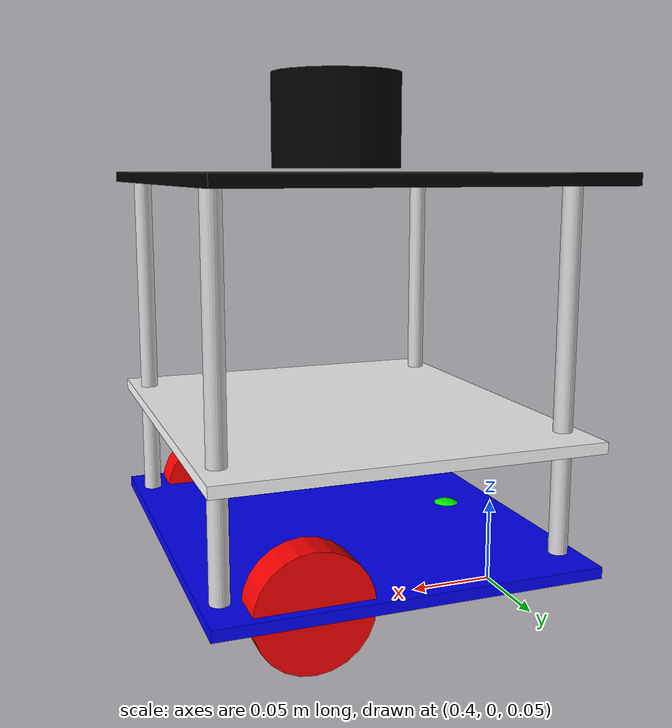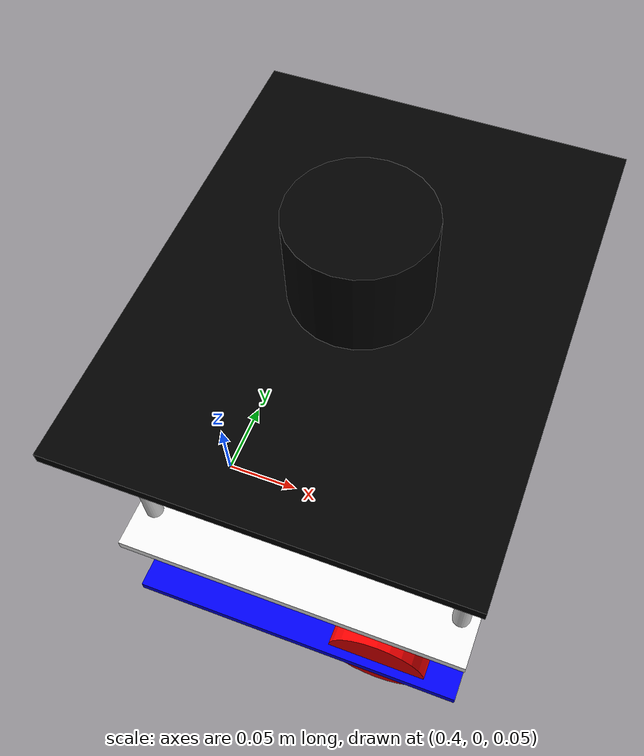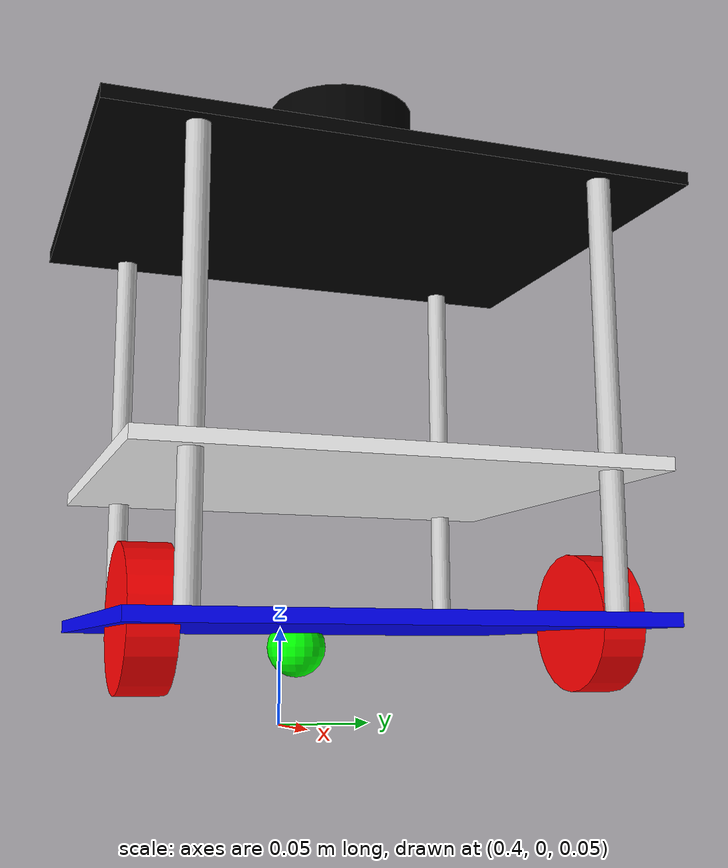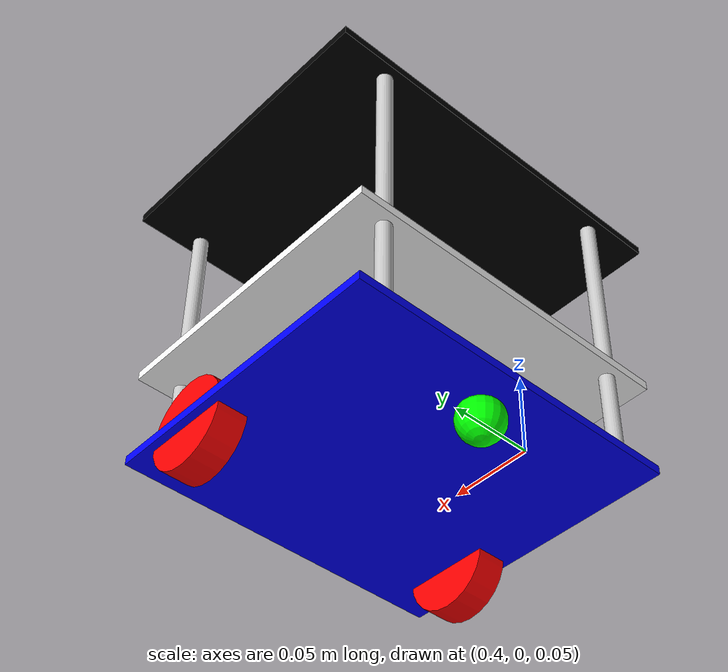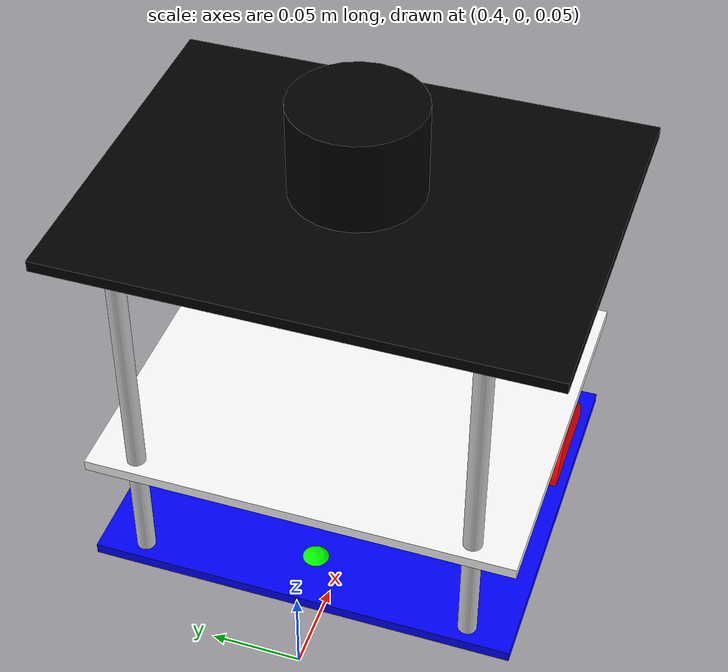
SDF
<?xml version="1.0"?>
<sdf version="1.8">
  <model name="my_robot" canonical_link="chassis">
    <pose>0 0 0 0 0 0</pose>

<link name='chassis'>
        <pose relative_to='__model__'>0.5 0 0.1 0 0 0</pose>
        <inertial>
          <mass>3</mass>
          <inertia>
            <ixx>0.126164</ixx>
            <ixy>0</ixy>
            <ixz>0</ixz>
            <iyy>0.416519</iyy>
            <iyz>0</iyz>
            <izz>0.481014</izz>
          </inertia>
        </inertial>
        <visual name='visual'>
          <geometry>
            <box>
              <size>0.2 0.23 0.006</size>
            </box>
          </geometry>
          <material>
            <ambient>0.0 0.0 1.0 1</ambient>
            <diffuse>0.0 0.0 1.0 1</diffuse>
            <specular>0.0 0.0 1.0 1</specular>
          </material>
        </visual>
        <collision name='collision'>
          <!-- collision важна для реакций физики (сталкивание с объектами) -->
          <geometry>
            <box>
              <size>0.2 0.16 0.006</size>
            </box>
          </geometry>
        </collision>
      </link>

      <link name='left_wheel'>
        <pose relative_to="chassis">0.05 0.10 0 -1.5707 0 0</pose>
        <inertial>
          <mass>0.2</mass>
          <inertia>
            <ixx>0.145833</ixx>
            <ixy>0</ixy>
            <ixz>0</ixz>
            <iyy>0.145833</iyy>
            <iyz>0</iyz>
            <izz>0.125</izz>
          </inertia>
        </inertial>
        <visual name='visual'>
          <geometry>
            <cylinder>
              <radius>0.03</radius>
              <length>0.02</length>
            </cylinder>
          </geometry>
          <material>
            <ambient>1.0 0.0 0.0 1</ambient>
            <diffuse>1.0 0.0 0.0 1</diffuse>
            <specular>1.0 0.0 0.0 1</specular>
          </material>
        </visual>
        <collision name='collision'>
          <geometry>
            <cylinder>
              <radius>0.03</radius>
              <length>0.02</length>
            </cylinder>
          </geometry>
        </collision>
      </link>

      <!--
        Правое колесо (right_wheel).
        Аналогично левому, только y=-0.10.
      -->
      <link name='right_wheel'>
        <pose relative_to="chassis">0.05 -0.10 0 -1.5707 0 0</pose>
        <inertial>
          <mass>0.2</mass>
          <inertia>
            <ixx>0.145833</ixx>
            <ixy>0</ixy>
            <ixz>0</ixz>
            <iyy>0.145833</iyy>
            <iyz>0</iyz>
            <izz>0.125</izz>
          </inertia>
        </inertial>
        <visual name='visual'>
          <geometry>
            <cylinder>
              <radius>0.03</radius>
              <length>0.02</length>
            </cylinder>
          </geometry>
          <material>
            <ambient>1.0 0.0 0.0 1</ambient>
            <diffuse>1.0 0.0 0.0 1</diffuse>
            <specular>1.0 0.0 0.0 1</specular>
          </material>
        </visual>
        <collision name='collision'>
          <geometry>
            <cylinder>
              <radius>0.03</radius>
              <length>0.02</length>
            </cylinder>
          </geometry>
        </collision>
      </link>

      <!--
        frame "caster_frame" привязан к шасси (chassis).
        Это точка, к которой затем крепится link caster (шарообразная опора).
      -->
      <frame name="caster_frame" attached_to='chassis'>
        <pose>-0.07 0 -0.01 0 0 0</pose>
      </frame>

      <!--
        Кастер (caster) - задний опорный шарик.
        Расположен на frame="caster_frame".
        Масса, инерция - условные.
      -->
      <link name='caster'>
        <pose relative_to='caster_frame'/>
        <inertial>
          <mass>0.5</mass>
          <inertia>
            <ixx>0.1</ixx>
            <ixy>0</ixy>
            <ixz>0</ixz>
            <iyy>0.1</iyy>
            <iyz>0</iyz>
            <izz>0.1</izz>
          </inertia>
        </inertial>
        <visual name='visual'>
          <geometry>
            <sphere>
              <radius>0.015</radius>
            </sphere>
          </geometry>
          <material>
            <ambient>0.0 1 0.0 1</ambient>
            <diffuse>0.0 1 0.0 1</diffuse>
            <specular>0.0 1 0.0 1</specular>
          </material>
        </visual>
        <collision name='collision'>
          <geometry>
            <sphere>
              <radius>0.02</radius>
            </sphere>
          </geometry>
        </collision>
      </link>

      <!--
        floor1 - "первый этаж" (промежуточная платформа),
        поднят над шасси на 0.065 м.
        Масса и габариты - условные.
      -->
      <link name="floor1">
        <pose relative_to="chassis">0 0 0.065 0 0 0</pose>
        <inertial>
          <mass>3</mass>
          <inertia>
            <ixx>0.01</ixx>
            <ixy>0</ixy>
            <ixz>0</ixz>
            <iyy>0.01</iyy>
            <iyz>0</iyz>
            <izz>0.01</izz>
          </inertia>
        </inertial>
        <visual name="floor1_visual">
          <geometry>
            <box>
              <size>0.2 0.23 0.006</size>
            </box>
          </geometry>
          <material>
            <ambient>1.0 1.0 1.0 1</ambient>
            <diffuse>1.0 1.0 1.0 1</diffuse>
          </material>
        </visual>
        <collision name="floor1_collision">
          <geometry>
            <box>
              <size>0.2 0.23 0.006</size>
            </box>
          </geometry>
        </collision>
      </link>
      <joint name="floor1_joint" type="fixed">
        <parent>chassis</parent>
        <child>floor1</child>
      </joint>

      <!--
        floor2 - "второй этаж" (верхняя платформа),
        на высоте 0.195 над шасси.
      -->
      <link name="floor2">
        <pose relative_to="chassis">0 0 0.195 0 0 0</pose>
        <inertial>
          <mass>3</mass>
          <inertia>
            <ixx>0.02</ixx>
            <ixy>0</ixy>
            <ixz>0</ixz>
            <iyy>0.02</iyy>
            <iyz>0</iyz>
            <izz>0.02</izz>
          </inertia>
        </inertial>
        <visual name="floor2_visual">
          <geometry>
            <box>
              <size>0.2 0.26 0.006</size>
            </box>
          </geometry>
          <material>
            <ambient>0.0 0.0 0.0 1</ambient>
            <diffuse>0.0 0.0 0.0 1</diffuse>
          </material>
        </visual>
        <collision name="floor2_collision">
          <geometry>
            <box>
              <size>0.2 0.16 0.006</size>
            </box>
          </geometry>
        </collision>
      </link>
      <joint name="floor2_joint" type="fixed">
        <parent>chassis</parent>
        <child>floor2</child>
      </joint>

<!-- Камера -->
    <link name="camera_link">
      <pose relative_to="floor2">0 0 0.03 0 0 0</pose>
      <inertial>
        <mass>0.2</mass>
        <inertia>
          <ixx>0.001</ixx>
          <ixy>0</ixy>
          <ixz>0</ixz>
          <iyy>0.001</iyy>
          <iyz>0</iyz>
          <izz>0.001</izz>
        </inertia>
      </inertial>
      <visual name="camera_visual">
        <geometry>
          <cylinder>
            <radius>0.035</radius>
            <length>0.05</length>
          </cylinder>
        </geometry>
        <material>
          <ambient>0 0 0 1</ambient>
          <diffuse>0 0 0 1</diffuse>
        </material>
      </visual>
      <collision name="camera_collision">
        <geometry>
          <cylinder>
            <radius>0.035</radius>
            <length>0.05</length>
          </cylinder>
        </geometry>
      </collision>

      <!-- Сенсор камеры -->
      <sensor name="camera_sensor" type="camera">
        <camera name="camera">
          <horizontal_fov>1.0472</horizontal_fov>
          <image>
            <width>640</width>
            <height>480</height>
            <format>R8G8B8</format>
          </image>
          <clip>
            <near>0.05</near>
            <far>100</far>
          </clip>
        </camera>
        <always_on>true</always_on>
        <update_rate>30</update_rate>
        <visualize>true</visualize>
      </sensor>
    </link>

    <joint name="camera_joint" type="fixed">
      <parent>floor2</parent>
      <child>camera_link</child>
    </joint>
      <!--
        Ось вращения левого колеса (left_wheel_joint) - revolute.
        joint подключает parent=chassis, child=left_wheel.
      -->
      <joint name='left_wheel_joint' type='revolute'>
        <pose relative_to='left_wheel'/>
        <parent>chassis</parent>
        <child>left_wheel</child>
        <axis>
          <xyz expressed_in='__model__'>0 1 0</xyz>
          <limit>
            <lower>-1.79769e+308</lower>
            <upper>1.79769e+308</upper>
          </limit>
        </axis>
      </joint>

      <!--
        Аналогично для правого колеса (right_wheel_joint).
      -->
      <joint name='right_wheel_joint' type='revolute'>
        <pose relative_to='right_wheel'/>
        <parent>chassis</parent>
        <child>right_wheel</child>
        <axis>
          <xyz expressed_in='__model__'>0 1 0</xyz>
          <limit>
            <lower>-1.79769e+308</lower>
            <upper>1.79769e+308</upper>
          </limit>
        </axis>
      </joint>

      <!-- Передняя левая стойка -->
      <link name="rod_front_left">
        <pose relative_to="chassis">0.09 0.09 0.1 0 0 0</pose>
        <inertial>
          <mass>0.05</mass>
          <inertia>
            <ixx>1e-5</ixx>
            <ixy>0</ixy>
            <ixz>0</ixz>
            <iyy>1e-5</iyy>
            <iyz>0</iyz>
            <izz>1e-5</izz>
          </inertia>
        </inertial>
        <visual name="visual">
          <geometry>
            <cylinder>
              <radius>0.005</radius>
              <length>0.195</length>
            </cylinder>
          </geometry>
          <material>
            <ambient>0.8 0.8 0.8 1</ambient>
            <diffuse>0.8 0.8 0.8 1</diffuse>
            <specular>0.8 0.8 0.8 1</specular>
          </material>
        </visual>
        <collision name="collision">
          <geometry>
            <cylinder>
              <radius>0.005</radius>
              <length>0.195</length>
            </cylinder>
          </geometry>
        </collision>
      </link>
      <joint name="rod_front_left_joint" type="fixed">
        <parent>chassis</parent>
        <child>rod_front_left</child>
      </joint>

      <!-- Передняя правая стойка -->
      <link name="rod_front_right">
        <pose relative_to="chassis">0.09 -0.09 0.1 0 0 0</pose>
        <inertial>
          <mass>0.05</mass>
          <inertia>
            <ixx>1e-5</ixx>
            <ixy>0</ixy>
            <ixz>0</ixz>
            <iyy>1e-5</iyy>
            <iyz>0</iyz>
            <izz>1e-5</izz>
          </inertia>
        </inertial>
        <visual name="visual">
          <geometry>
            <cylinder>
              <radius>0.005</radius>
              <length>0.195</length>
            </cylinder>
          </geometry>
          <material>
            <ambient>0.8 0.8 0.8 1</ambient>
            <diffuse>0.8 0.8 0.8 1</diffuse>
            <specular>0.8 0.8 0.8 1</specular>
          </material>
        </visual>
        <collision name="collision">
          <geometry>
            <cylinder>
              <radius>0.005</radius>
              <length>0.195</length>
            </cylinder>
          </geometry>
        </collision>
      </link>
      <joint name="rod_front_right_joint" type="fixed">
        <parent>chassis</parent>
        <child>rod_front_right</child>
      </joint>

      <!-- Задняя левая стойка -->
      <link name="rod_rear_left">
        <pose relative_to="chassis">-0.09 0.09 0.1 0 0 0</pose>
        <inertial>
          <mass>0.05</mass>
          <inertia>
            <ixx>1e-5</ixx>
            <ixy>0</ixy>
            <ixz>0</ixz>
            <iyy>1e-5</iyy>
            <iyz>0</iyz>
            <izz>1e-5</izz>
          </inertia>
        </inertial>
        <visual name="visual">
          <geometry>
            <cylinder>
              <radius>0.005</radius>
              <length>0.195</length>
            </cylinder>
          </geometry>
          <material>
            <ambient>0.8 0.8 0.8 1</ambient>
            <diffuse>0.8 0.8 0.8 1</diffuse>
            <specular>0.8 0.8 0.8 1</specular>
          </material>
        </visual>
        <collision name="collision">
          <geometry>
            <cylinder>
              <radius>0.005</radius>
              <length>0.195</length>
            </cylinder>
          </geometry>
        </collision>
      </link>
      <joint name="rod_rear_left_joint" type="fixed">
        <parent>chassis</parent>
        <child>rod_rear_left</child>
      </joint>

      <!-- Задняя правая стойка -->
      <link name="rod_rear_right">
        <pose relative_to="chassis">-0.09 -0.09 0.1 0 0 0</pose>
        <inertial>
          <mass>0.05</mass>
          <inertia>
            <ixx>1e-5</ixx>
            <ixy>0</ixy>
            <ixz>0</ixz>
            <iyy>1e-5</iyy>
            <iyz>0</iyz>
            <izz>1e-5</izz>
          </inertia>
        </inertial>
        <visual name="visual">
          <geometry>
            <cylinder>
              <radius>0.005</radius>
              <length>0.195</length>
            </cylinder>
          </geometry>
          <material>
            <ambient>0.8 0.8 0.8 1</ambient>
            <diffuse>0.8 0.8 0.8 1</diffuse>
            <specular>0.8 0.8 0.8 1</specular>
          </material>
        </visual>
        <collision name="collision">
          <geometry>
            <cylinder>
              <radius>0.005</radius>
              <length>0.195</length>
            </cylinder>
          </geometry>
        </collision>
      </link>
      <joint name="rod_rear_right_joint" type="fixed">
        <parent>chassis</parent>
        <child>rod_rear_right</child>
      </joint>

      <!--
        Соединение caster'а (задний шар) с шасси через шаровой joint (type='ball').
      -->
      <joint name='caster_wheel' type='ball'>
        <parent>chassis</parent>
        <child>caster</child>
      </joint>

      <plugin filename="gz-sim-diff-drive-system" name="gz::sim::systems::DiffDrive">
        <left_joint>left_wheel_joint</left_joint>
        <right_joint>right_wheel_joint</right_joint>
        <wheel_separation>0.19</wheel_separation>
        <wheel_radius>0.032</wheel_radius>
        <odom_publish_frequency>1</odom_publish_frequency>
        <topic>cmd_vel</topic>
      </plugin>
    </model>
</sdf>
